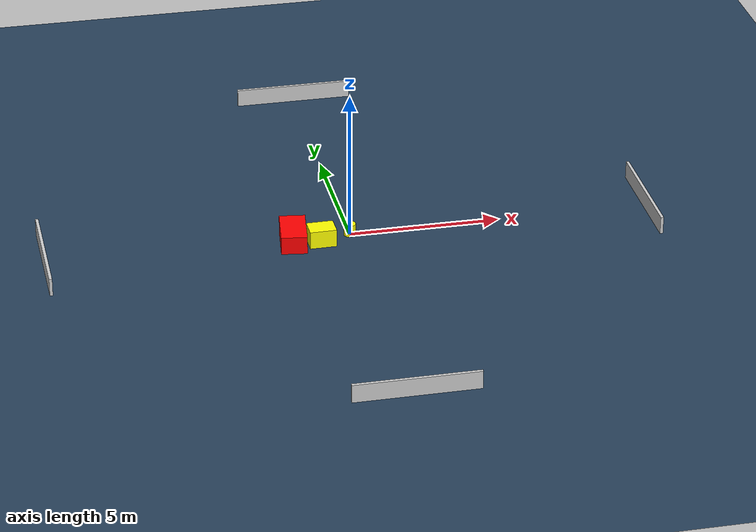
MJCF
<?xml version="1.0" ?>
<mujoco model="generated_environment">
  <option timestep="0.01" integrator="RK4" cone="elliptic"/>
  <default>
    <geom density="1"/>
  </default>
  <asset>
    <texture builtin="gradient" height="3072" name="skybox" rgb1="0.3 0.5 0.7" rgb2="0 0 0" type="skybox" width="512"/>
    <texture builtin="checker" height="300" name="groundplane" rgb1="0.2 0.3 0.4" rgb2="0.1 0.2 0.3" type="2d" width="300"/>
    <material name="groundplane" reflectance="0.2" texrepeat="5 5" texture="groundplane"/>
  </asset>
  <worldbody>
    <light dir="0 0 -1" directional="true" pos="0 0 1.5"/>
    <geom condim="3" friction="0.5 0.005 0.001" material="groundplane" name="floor" pos="0 0 0" size="0 0 0.05" type="plane"/>
    <body name="walls">
      <geom name="wall_1" condim="4" pos="-10.0 0.0 0.3" rgba="0.800000011920929 0.800000011920929 0.800000011920929 1.0" size="0.05 2.0 0.3" type="box"/>
      <geom name="wall_2" condim="4" pos="10.0 0.0 0.3" rgba="0.800000011920929 0.800000011920929 0.800000011920929 1.0" size="0.05 2.0 0.3" type="box"/>
      <geom name="wall_3" condim="4" pos="0.0 -10.0 0.3" rgba="0.800000011920929 0.800000011920929 0.800000011920929 1.0" size="2.0 0.05 0.3" type="box"/>
      <geom name="wall_4" condim="4" pos="0.0 10.0 0.3" rgba="0.800000011920929 0.800000011920929 0.800000011920929 1.0" size="2.0 0.05 0.3" type="box"/>
    </body>
    <body name="robot">
      <joint name="joint_x" type="slide" pos="0 0 0" axis="1 0 0"/>
      <joint name="joint_y" type="slide" pos="0 0 0" axis="0 1 0"/>
      <geom name="robot" type="cylinder" pos="0.0 0.0 0.2" size="0.2 0.2 0.0" mass="5.0" friction="1.0 0.005 0.0001" condim="4" rgba="1.0 1.0 0.0 1.0"/>
    </body>
    <body name="obstacle_1_movable">
      <geom name="obstacle_1_movable" condim="4" pos="-1.0088164986638877 -0.3753044209488746 0.3" euler="0 0 90.67529508023296" friction="0.0 0.005 0.001" rgba="1.0 1.0 0.0 1.0" size="0.3306418179749453 0.4407116593048134 0.3" type="box" mass="0.1"/>
      <joint type="free"/>
    </body>
    <body name="obstacle_2_static">
      <geom name="obstacle_2_static" condim="4" pos="-1.9089777677044826 -0.18553095799027422 0.3" euler="0 0 352.31070794383334" friction="0.0 0.005 0.001" rgba="1.0 0.0 0.0 1.0" size="0.42488974689350933 0.7489291877423252 0.3" type="box"/>
    </body>
  </worldbody>
  <actuator>
    <motor name="actuator_x" joint="joint_x" gear="1" ctrlrange="-1 1"/>
    <motor name="actuator_y" joint="joint_y" gear="1" ctrlrange="-1 1"/>
  </actuator>
</mujoco>
